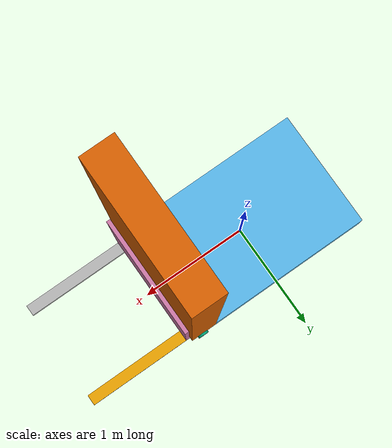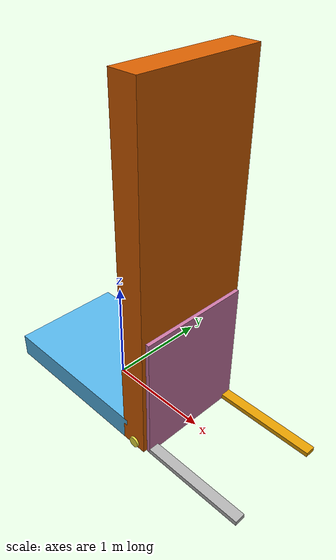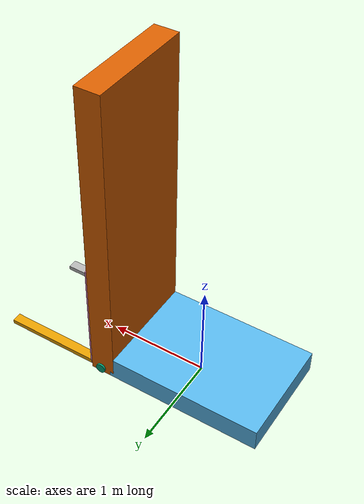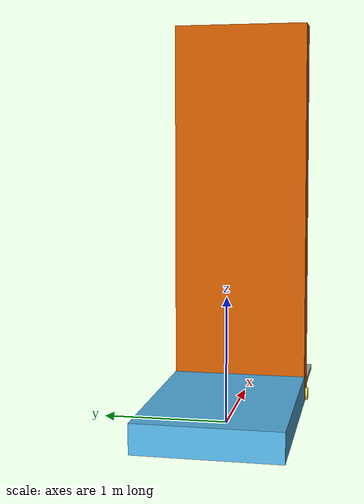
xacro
<?xml version="1.0"?>
<robot xmlns:xacro="http://www.ros.org/wiki/xacro" name="kryptonitex_forklift">
  <xacro:property name="wheel_r" value="0.05"/>
  <xacro:property name="chassis_l" value="1.59"/>
  <xacro:property name="chassis_w" value="1.115"/>
  <xacro:property name="chassis_h" value="0.23"/>
  <xacro:property name="mast_h" value="3.2"/>
  <xacro:property name="fork_l" value="0.99"/>
  <xacro:property name="fork_w" value="0.10"/>

  <link name="base_link"/>
  <link name="chassis_link">
    <visual><origin xyz="0 0 0.115"/><geometry><box size="${chassis_l} ${chassis_w} ${chassis_h}"/></geometry></visual>
    <collision><origin xyz="0 0 0.115"/><geometry><box size="${chassis_l} ${chassis_w} ${chassis_h}"/></geometry></collision>
    <inertial><origin xyz="0 0 0.115"/><mass value="30"/><inertia ixx="3.52" iyy="6.59" izz="7.04" ixy="0" ixz="0" iyz="0"/></inertial>
  </link>
  <joint name="chassis_joint" type="fixed"><parent link="base_link"/><child link="chassis_link"/><origin xyz="-0.1 0 0"/></joint>

  <link name="left_wheel"><visual><geometry><cylinder radius="${wheel_r}" length="0.04"/></geometry></visual><collision><geometry><cylinder radius="${wheel_r}" length="0.04"/></geometry></collision><inertial><mass value="0.1"/><inertia ixx="0.0001" iyy="0.0001" izz="0.000125"/></inertial></link>
  <joint name="left_wheel_joint" type="continuous"><parent link="base_link"/><child link="left_wheel"/><origin xyz="0.795 0.5575 0.05" rpy="-1.5708 0 0"/><axis xyz="0 0 1"/></joint>
  <link name="right_wheel"><visual><geometry><cylinder radius="${wheel_r}" length="0.04"/></geometry></visual><collision><geometry><cylinder radius="${wheel_r}" length="0.04"/></geometry></collision><inertial><mass value="0.1"/><inertia ixx="0.0001" iyy="0.0001" izz="0.000125"/></inertial></link>
  <joint name="right_wheel_joint" type="continuous"><parent link="base_link"/><child link="right_wheel"/><origin xyz="0.795 -0.5575 0.05" rpy="1.5708 0 0"/><axis xyz="0 0 -1"/></joint>

  <link name="caster_wheel"><visual><geometry><sphere radius="0.05"/></geometry></visual><collision><geometry><sphere radius="0.05"/></geometry></collision><inertial><mass value="0.1"/><inertia ixx="0.0001" iyy="0.0001" izz="0.0001"/></inertial></link>
  <joint name="caster_joint" type="fixed"><parent link="chassis_link"/><child link="caster_wheel"/><origin xyz="-0.53 0 0.05"/></joint>

  <link name="mast"><visual><origin xyz="0 0 1.6"/><geometry><box size="0.25 1.115 3.2"/></geometry></visual><collision><origin xyz="0 0 1.6"/><geometry><box size="0.25 1.115 3.2"/></geometry></collision><inertial><origin xyz="0 0 1.6"/><mass value="5"/><inertia ixx="4.9" iyy="4.3" izz="1.1"/></inertial></link>
  <joint name="mast_joint" type="fixed"><parent link="chassis_link"/><child link="mast"/><origin xyz="0.88 0 0"/></joint>

  <link name="fork_carriage"><visual><origin xyz="0 0 0.61"/><geometry><box size="0.035 1.05 1.22"/></geometry></visual><collision><origin xyz="0 0 0.61"/><geometry><box size="0.035 1.05 1.22"/></geometry></collision><inertial><origin xyz="0 0 0.61"/><mass value="0.5"/><inertia ixx="0.08" iyy="0.08" izz="0.05"/></inertial></link>
  <joint name="fork_base_joint" type="prismatic"><parent link="mast"/><child link="fork_carriage"/><origin xyz="0.15 0 0"/><axis xyz="0 0 1"/><limit lower="-0.05" upper="2.5" effort="1000" velocity="0.5"/></joint>

  <link name="left_fork"><visual><origin xyz="0.495 -0.475 0.02"/><geometry><box size="${fork_l} ${fork_w} 0.045"/></geometry></visual><collision><origin xyz="0.495 -0.475 0.02"/><geometry><box size="${fork_l} ${fork_w} 0.045"/></geometry></collision><inertial><mass value="0.05"/><inertia ixx="0.001" iyy="0.004" izz="0.004"/></inertial></link>
  <joint name="left_fork_joint" type="fixed"><parent link="fork_carriage"/><child link="left_fork"/></joint>
  <link name="right_fork"><visual><origin xyz="0.495 0.475 0.02"/><geometry><box size="${fork_l} ${fork_w} 0.045"/></geometry></visual><collision><origin xyz="0.495 0.475 0.02"/><geometry><box size="${fork_l} ${fork_w} 0.045"/></geometry></collision><inertial><mass value="0.05"/><inertia ixx="0.001" iyy="0.004" izz="0.004"/></inertial></link>
  <joint name="right_fork_joint" type="fixed"><parent link="fork_carriage"/><child link="right_fork"/></joint>

  <link name="laser_frame"/>
  <joint name="laser_joint" type="fixed"><parent link="chassis_link"/><child link="laser_frame"/><origin xyz="0 0 0.65"/></joint>
  <gazebo reference="laser_frame">
    <sensor name="lidar" type="gpu_lidar">
      <topic>/scan</topic><update_rate>10</update_rate><always_on>true</always_on>
      <lidar><scan><horizontal><samples>360</samples><resolution>1</resolution><min_angle>-3.14159</min_angle><max_angle>3.14159</max_angle></horizontal></scan><range><min>0.2</min><max>20.0</max><resolution>0.01</resolution></range></lidar>
    </sensor>
  </gazebo>

  <ros2_control name="GazeboSimSystem" type="system">
    <hardware><plugin>gz_ros2_control/GazeboSimSystem</plugin></hardware>
    <joint name="left_wheel_joint"><command_interface name="velocity"/><state_interface name="position"/><state_interface name="velocity"/></joint>
    <joint name="right_wheel_joint"><command_interface name="velocity"/><state_interface name="position"/><state_interface name="velocity"/></joint>
    <joint name="fork_base_joint"><command_interface name="position"/><state_interface name="position"/><state_interface name="velocity"/></joint>
  </ros2_control>
  <gazebo>
    <plugin filename="libgz_ros2_control-system.so" name="gz_ros2_control::GazeboSimROS2ControlPlugin">
      <parameters>$(find forklift_robot)/config/controllers.yaml</parameters>
    </plugin>
  </gazebo>
</robot>
